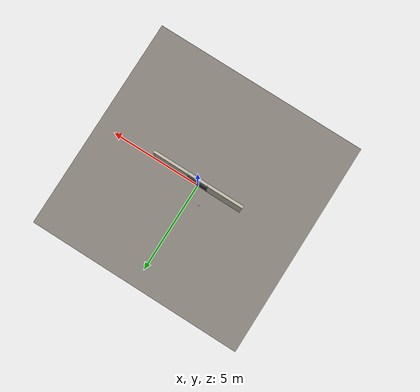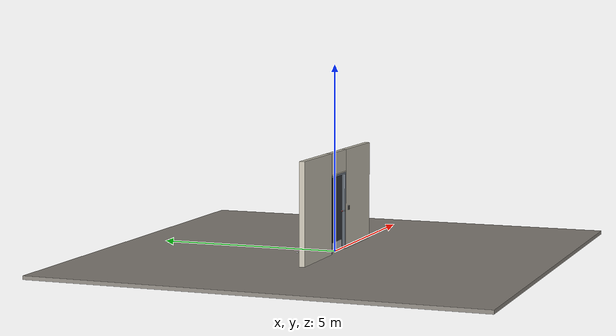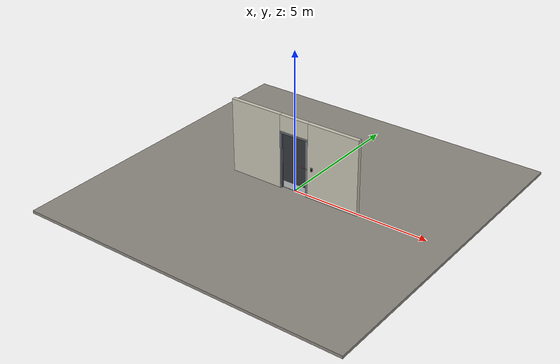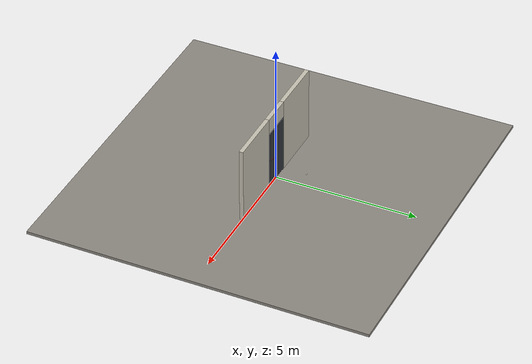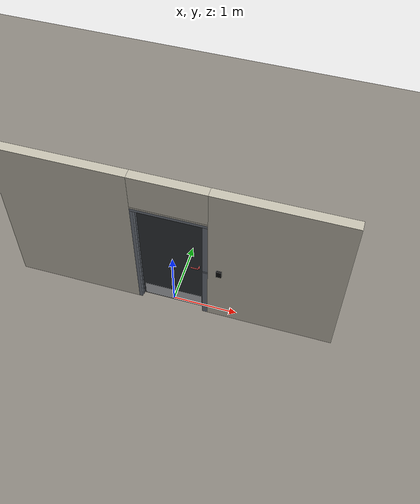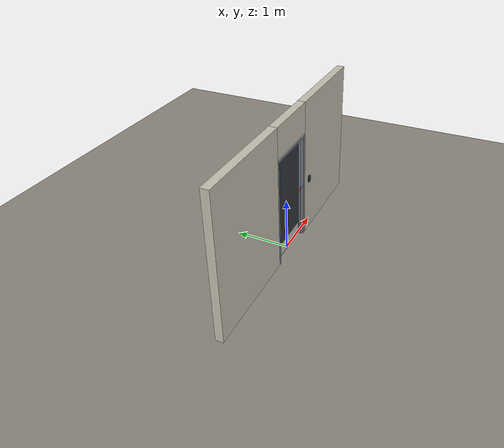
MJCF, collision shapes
<?xml version="1.0" ?>
<mujoco model="db0487_swing_single_full">
  <compiler angle="radian" meshdir="../../hardware" texturedir="../../textures" autolimits="true" inertiafromgeom="false"/>
  <option timestep="0.002" integrator="implicitfast" cone="elliptic" impratio="10" noslip_iterations="3">
    <flag multiccd="enable"/>
  </option>
  <size memory="16M"/>
  <default>
    <geom condim="4" solref="0.005 1" solimp="0.95 0.99 0.001"/>
    <joint solreflimit="0.005 1" solimplimit="0.95 0.99 0.001"/>
    <tendon solreflimit="0.005 1"/>
    <equality solref="0.002 1"/>
  </default>
  <visual>
    <headlight ambient="0.4 0.4 0.4" diffuse="0.7 0.7 0.7" specular="0.2 0.2 0.2"/>
    <quality shadowsize="4096"/>
    <map znear="0.01" zfar="60"/>
  </visual>
  <asset>
    <mesh name="hinge_dcb8da44bf" file="hinge_dcb8da44bf.obj"/>
    <mesh name="hinge_jamb_8e208d7310" file="hinge_jamb_8e208d7310.obj"/>
    <mesh name="lever_6268dcb28c" file="lever_6268dcb28c.obj"/>
    <material name="mat_floor" rgba="0.55 0.53 0.5 1" specular="0.2" shininess="0.15" reflectance="0"/>
    <material name="mat_wall" rgba="0.78 0.76 0.7 1" specular="0.2" shininess="0.1" reflectance="0"/>
    <material name="mat_leaf" rgba="0.2 0.21 0.23 1" specular="0.2" shininess="0.38" reflectance="0"/>
    <material name="mat_hinge" rgba="0.65 0.66 0.68 1" specular="0.74" shininess="0.5" reflectance="0.36"/>
    <material name="mat_op_stainless" rgba="0.75 0.76 0.77 1" specular="0.8" shininess="0.65" reflectance="0.4"/>
    <material name="mat_trim" rgba="0.85 0.66 0.3 1" specular="0.8" shininess="0.75" reflectance="0.4"/>
    <material name="mat_bolt" rgba="0.75 0.76 0.77 1" specular="0.8" shininess="0.65" reflectance="0.4"/>
    <material name="mat_frame" rgba="0.45 0.48 0.52 1" specular="0.32" shininess="0.6" reflectance="0.08"/>
    <material name="mat_kick" rgba="0.75 0.76 0.77 1" specular="0.8" shininess="0.65" reflectance="0.4"/>
    <material name="mat_wallreader" rgba="0.05 0.05 0.05 1" specular="0.38" shininess="0.3" reflectance="0.12"/>
    <material name="mat_stop" rgba="0.9 0.9 0.92 1" specular="0.8" shininess="0.9" reflectance="0.4"/>
    <texture name="skybox" type="skybox" builtin="gradient" rgb1="0.6 0.7 0.85" rgb2="0.9 0.92 0.95" width="256" height="256"/>
  </asset>
  <worldbody>
    <light name="sun" pos="1.5 -2.5 4" dir="-0.3 0.5 -0.8" directional="true" diffuse="0.8 0.8 0.8" specular="0.3 0.3 0.3" castshadow="true"/>
    <light name="fill" pos="-1.5 2.5 3" dir="0.3 -0.5 -0.7" directional="true" diffuse="0.35 0.35 0.4" castshadow="false"/>
    <camera name="robot_view" pos="0 -2.579187 1.734312" xyaxes="1 0 0 0 0.26963 0.962964" fovy="52"/>
    <camera name="far_view" pos="0 2.505187 1.734312" xyaxes="-1 0 0 0 -0.26963 0.962964" fovy="52"/>
    <camera name="iso" pos="1.932062 -2.172438 2.141063" xyaxes="0.741536 0.670913 0 -0.242917 0.268487 0.932151" fovy="46"/>
    <camera name="detail_handle" pos="0.5105 -0.8835 1.32" xyaxes="0.97561 0.219512 0 -0.070934 0.315262 0.94635" fovy="38"/>
    <geom name="floor" type="box" size="6 6 0.05" pos="0 0 -0.05" material="mat_floor" group="0" contype="1" conaffinity="1" friction="0.8 0.005 0.0001" density="2400"/>
    <geom name="wall_left" type="box" size="0.98175 0.0725 1.35" pos="-1.51825 -0.037 1.35" material="mat_wall" group="0" contype="1" conaffinity="1" friction="0.6 0.005 0.0001" density="800"/>
    <geom name="wall_right" type="box" size="0.96675 0.0725 1.35" pos="1.53325 -0.037 1.35" material="mat_wall" group="0" contype="1" conaffinity="1" friction="0.6 0.005 0.0001" density="800"/>
    <geom name="wall_header" type="box" size="0.5515 0.0725 0.2875" pos="0.015 -0.037 2.4125" material="mat_wall" group="0" contype="1" conaffinity="1" friction="0.6 0.005 0.0001" density="800"/>
    <geom name="hinge_0_jamb" type="mesh" mesh="hinge_jamb_8e208d7310" pos="-0.4835 0.0355 0.259" quat="0 1 0 0" material="mat_hinge" group="1" contype="0" conaffinity="0" density="7850"/>
    <geom name="hinge_1_jamb" type="mesh" mesh="hinge_jamb_8e208d7310" pos="-0.4835 0.0355 0.793" quat="0 1 0 0" material="mat_hinge" group="1" contype="0" conaffinity="0" density="7850"/>
    <geom name="hinge_2_jamb" type="mesh" mesh="hinge_jamb_8e208d7310" pos="-0.4835 0.0355 1.327" quat="0 1 0 0" material="mat_hinge" group="1" contype="0" conaffinity="0" density="7850"/>
    <geom name="hinge_3_jamb" type="mesh" mesh="hinge_jamb_8e208d7310" pos="-0.4835 0.0355 1.861" quat="0 1 0 0" material="mat_hinge" group="1" contype="0" conaffinity="0" density="7850"/>
    <geom name="jamb_hinge" type="box" size="0.025 0.0725 1.0225" pos="-0.5115 -0.037 1.0225" material="mat_frame" group="0" contype="1" conaffinity="1" friction="0.6 0.005 0.0001" density="300"/>
    <geom name="strike_1040_wall_n" type="box" size="0.04 0.0515 0.015" pos="0.5265 -0.058 1.04" material="mat_frame" group="0" contype="1" conaffinity="1" friction="0.6 0.005 0.0001" density="300"/>
    <geom name="strike_1040_wall_p" type="box" size="0.04 0.008 0.015" pos="0.5265 0.0145 1.04" material="mat_frame" group="0" contype="1" conaffinity="1" friction="0.6 0.005 0.0001" density="300"/>
    <geom name="strike_1040_ramp" type="box" size="0.04 0.018125 0.015" pos="0.530415 0.022448 1.04" quat="0.977335 0 0 -0.2117" material="mat_frame" group="0" contype="1" conaffinity="1" friction="0.12 0.005 0.0001" density="300"/>
    <geom name="strike_1040_back" type="box" size="0.031 0.0065 0.015" pos="0.5355 0 1.04" material="mat_frame" group="0" contype="1" conaffinity="1" friction="0.6 0.005 0.0001" density="300"/>
    <geom name="jamb_strike_0" type="box" size="0.04 0.0725 0.5125" pos="0.5265 -0.037 0.5125" material="mat_frame" group="0" contype="1" conaffinity="1" friction="0.6 0.005 0.0001" density="300"/>
    <geom name="jamb_strike_1" type="box" size="0.04 0.0725 0.495" pos="0.5265 -0.037 1.55" material="mat_frame" group="0" contype="1" conaffinity="1" friction="0.6 0.005 0.0001" density="300"/>
    <geom name="jamb_head" type="box" size="0.5515 0.0725 0.025" pos="0.015 -0.037 2.07" material="mat_frame" group="0" contype="1" conaffinity="1" friction="0.6 0.005 0.0001" density="300"/>
    <geom name="head_stud" type="box" size="0.5515 0.0725 0.015" pos="0.015 -0.037 2.11" material="mat_wall" group="0" contype="1" conaffinity="1" friction="0.6 0.005 0.0001" density="500"/>
    <geom name="stop_hinge" type="box" size="0.0055 0.016 1.0225" pos="-0.481 -0.045 1.0225" material="mat_frame" group="0" contype="1" conaffinity="1" friction="0.6 0.005 0.0001" density="300"/>
    <geom name="stop_strike" type="box" size="0.0055 0.016 1.0225" pos="0.481 -0.045 1.0225" material="mat_frame" group="0" contype="1" conaffinity="1" friction="0.6 0.005 0.0001" density="300"/>
    <geom name="stop_head" type="box" size="0.4865 0.016 0.0055" pos="0 -0.045 2.0395" material="mat_frame" group="0" contype="1" conaffinity="1" friction="0.6 0.005 0.0001" density="300"/>
    <geom name="wall_reader" type="box" size="0.04 0.015 0.06" pos="0.7365 -0.1245 1.1" material="mat_wallreader" group="0" contype="1" conaffinity="1" friction="0.6 0.005 0.0001" density="1000"/>
    <geom name="floor_stop_dome" type="sphere" size="0.025" pos="-0.574913 0.850886 0" material="mat_stop" group="0" contype="1" conaffinity="1" friction="0.6 0.005 0.0001" density="7000"/>
    <site name="approach_point" pos="0 -1.5 0" quat="1 0 0 0" size="0.05" rgba="0.2 0.9 0.2 0.5" group="4"/>
    <site name="goal_point" pos="0 1.5 0" quat="1 0 0 0" size="0.05" rgba="0.2 0.9 0.2 0.5" group="4"/>
    <site name="door_plane_center" pos="0 0 1.0225" quat="1 0 0 0" size="0.02" rgba="0.2 0.9 0.2 0.5" group="4"/>
    <body name="leaf" pos="-0.4865 0 0">
      <inertial pos="0.480037 -0.000661 0.998624" mass="94.564728" quat="-0.498792 0.5006 0.500486 0.50012" diaginertia="7.506494505 33.769141495 41.220386662"/>
      <joint name="leaf_hinge" type="hinge" axis="0 0 1" pos="0.003 0.0355 0" limited="true" range="0 1.658063" damping="0.368237" frictionloss="0.409983" armature="0.02"/>
      <geom name="leaf_slab" type="box" size="0.4825 0.0285 1.016" pos="0.4855 0 1.025" material="mat_leaf" group="0" contype="1" conaffinity="1" friction="0.4 0.005 0.0001" density="1"/>
      <geom name="hinge_0" type="mesh" mesh="hinge_dcb8da44bf" pos="0.003 0.0355 0.259" quat="0 1 0 0" material="mat_hinge" group="1" contype="0" conaffinity="0" density="7850"/>
      <geom name="hinge_1" type="mesh" mesh="hinge_dcb8da44bf" pos="0.003 0.0355 0.793" quat="0 1 0 0" material="mat_hinge" group="1" contype="0" conaffinity="0" density="7850"/>
      <geom name="hinge_2" type="mesh" mesh="hinge_dcb8da44bf" pos="0.003 0.0355 1.327" quat="0 1 0 0" material="mat_hinge" group="1" contype="0" conaffinity="0" density="7850"/>
      <geom name="hinge_3" type="mesh" mesh="hinge_dcb8da44bf" pos="0.003 0.0355 1.861" quat="0 1 0 0" material="mat_hinge" group="1" contype="0" conaffinity="0" density="7850"/>
      <geom name="leaf_latch_bolt_faceplate" type="box" size="0.0006 0.011 0.025" pos="0.9674 0 1.04" material="mat_bolt" group="1" contype="0" conaffinity="0" density="8500"/>
      <geom name="kick_plate_n" type="box" size="0.4525 0.0008 0.125" pos="0.4855 -0.0293 0.144" material="mat_kick" group="2" contype="0" conaffinity="0" density="7900"/>
      <site name="leaf_edge_mid" pos="0.968 0 1.016" quat="1 0 0 0" size="0.02" rgba="0.2 0.9 0.2 0.5" group="4"/>
      <body name="leaf_handle" pos="0.913 0 1.04">
        <inertial pos="-0.034763 0 0" mass="1.049777" quat="0.707107 0 0 -0.707107" diaginertia="0.002362674 0.004606337 0.006401776"/>
        <joint name="leaf_handle_hinge" type="hinge" axis="0 -1 0" limited="true" range="0 0.96" damping="0.255793" frictionloss="0.05" stiffness="1.2" springref="-0.583333" armature="0.01"/>
        <geom name="leaf_handle_spindle" type="cylinder" size="0.006 0.0365" pos="0 0 0" quat="0.707107 -0.707107 0 0" material="mat_op_stainless" group="1" contype="0" conaffinity="0" density="7850"/>
        <geom name="leaf_handle_lever_n" type="mesh" mesh="lever_6268dcb28c" pos="0 -0.0285 0" quat="0.707107 0.707107 0 0" material="mat_op_stainless" group="1" contype="0" conaffinity="0" density="3000"/>
        <geom name="leaf_handle_lever_col_n" type="capsule" size="0.0095 0.0505" pos="-0.06 -0.0835 0" quat="0.707107 0 -0.707107 0" material="mat_op_stainless" group="3" contype="1" conaffinity="1" rgba="0.8 0.3 0.3 0.25" friction="0.7 0.01 0.0001" density="3000"/>
        <geom name="leaf_handle_hub_col_n" type="cylinder" size="0.012 0.022" pos="0 -0.0585 0" quat="0.707107 -0.707107 0 0" material="mat_op_stainless" group="3" contype="1" conaffinity="1" rgba="0.8 0.3 0.3 0.25" friction="0.6 0.005 0.0001" density="3000"/>
        <geom name="leaf_handle_lever_p" type="mesh" mesh="lever_6268dcb28c" pos="0 0.0285 0" quat="-0.707107 0.707107 0 0" material="mat_op_stainless" group="1" contype="0" conaffinity="0" density="3000"/>
        <geom name="leaf_handle_lever_col_p" type="capsule" size="0.0095 0.0505" pos="-0.06 0.0835 0" quat="0.707107 0 -0.707107 0" material="mat_op_stainless" group="3" contype="1" conaffinity="1" rgba="0.8 0.3 0.3 0.25" friction="0.7 0.01 0.0001" density="3000"/>
        <geom name="leaf_handle_hub_col_p" type="cylinder" size="0.012 0.022" pos="0 0.0585 0" quat="0.707107 -0.707107 0 0" material="mat_op_stainless" group="3" contype="1" conaffinity="1" rgba="0.8 0.3 0.3 0.25" friction="0.6 0.005 0.0001" density="3000"/>
        <site name="leaf_handle_grip_n" pos="-0.096 -0.0835 0" quat="1 0 0 0" size="0.012" rgba="0.2 0.9 0.2 0.5" group="4"/>
        <site name="leaf_handle_grip_p" pos="-0.096 0.0835 0" quat="1 0 0 0" size="0.012" rgba="0.2 0.9 0.2 0.5" group="4"/>
      </body>
      <body name="leaf_latch_bolt" pos="0.968 0 1.04">
        <inertial pos="-0.008 0 0" mass="0.027149" quat="0 0 0.707107 0.707107" diaginertia="0.000000328 0.000003943 0.000003943"/>
        <joint name="leaf_latch_bolt_slide" type="slide" axis="-1 0 0" limited="true" range="0 0.014" damping="2" frictionloss="0.3" stiffness="400" springref="-0.01" armature="0.1"/>
        <geom name="leaf_latch_bolt_capsule" type="capsule" size="0.005 0.017" pos="-0.008 0 0" quat="0.707107 0 0.707107 0" material="mat_bolt" group="0" contype="1" conaffinity="1" friction="0.2 0.005 0.0001" density="8500"/>
      </body>
    </body>
  </worldbody>
  <tendon>
    <fixed name="leaf_latch_bolt_coupling" limited="true" range="0 10">
      <joint joint="leaf_latch_bolt_slide" coef="1"/>
      <joint joint="leaf_handle_hinge" coef="-0.015385"/>
    </fixed>
  </tendon>
  <sensor>
    <jointpos name="leaf_hinge_pos" joint="leaf_hinge"/>
    <jointvel name="leaf_hinge_vel" joint="leaf_hinge"/>
    <jointpos name="leaf_handle_hinge_pos" joint="leaf_handle_hinge"/>
    <jointvel name="leaf_handle_hinge_vel" joint="leaf_handle_hinge"/>
    <jointpos name="leaf_latch_bolt_slide_pos" joint="leaf_latch_bolt_slide"/>
    <jointvel name="leaf_latch_bolt_slide_vel" joint="leaf_latch_bolt_slide"/>
  </sensor>
</mujoco>
